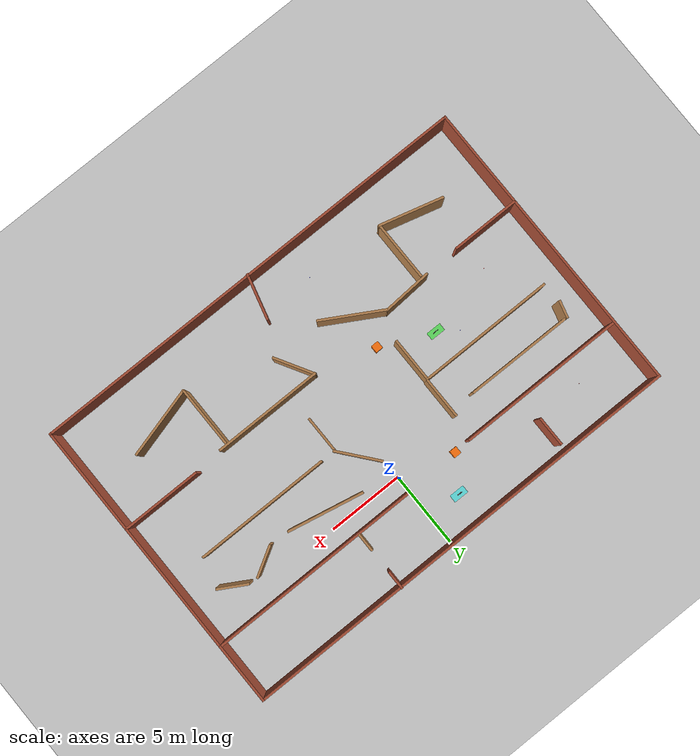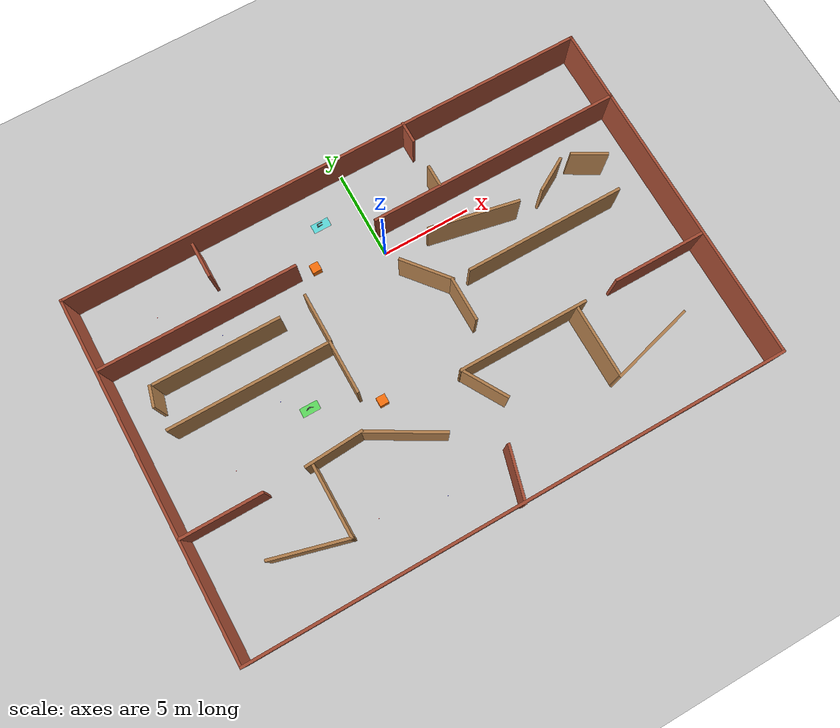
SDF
<sdf version="1.6">
 <world name="default">
  <model name="ground_plane">
   <static>1</static>
   <link name="link">
    <collision name="collision">
     <geometry><plane><normal>0 0 1</normal><size>100 100</size></plane></geometry>
     <surface><friction><ode><mu>1</mu><mu2>1</mu2></ode></friction></surface>
    </collision>
    <visual name="visual">
     <cast_shadows>0</cast_shadows>
     <geometry><plane><normal>0 0 1</normal><size>100 100</size></plane></geometry>
     <material>
      <script><uri>file://media/materials/scripts/gazebo.material</uri><name>Gazebo/Grey</name></script>
     </material>
    </visual>
    <velocity_decay><linear>0</linear><angular>0</angular></velocity_decay>
   </link>
  </model>
  <model name="officeroom">
   <pose>-0.693163 -4.92976 0 0 -0 0</pose>
   <link name="Wall_10">
    <collision name="Wall_10_Collision">
     <geometry><box><size>20 0.15 2.5</size></box></geometry>
     <pose>0 0 1.25 0 -0 0</pose>
    </collision>
    <visual name="Wall_10_Visual">
     <pose>0 0 1.25 0 -0 0</pose>
     <geometry><box><size>20 0.15 2.5</size></box></geometry>
     <material>
      <script><uri>file://media/materials/scripts/gazebo.material</uri><name>Gazebo/Bricks</name></script>
      <ambient>1 1 1 1</ambient>
     </material>
     <meta><layer>0</layer></meta>
    </visual>
    <pose>14.925 0.014919 0 0 -0 -1.57081</pose>
   </link>
   <link name="Wall_107">
    <collision name="Wall_107_Collision">
     <geometry><box><size>3.27854 0.15 2.5</size></box></geometry>
     <pose>0 0 1.25 0 -0 0</pose>
    </collision>
    <visual name="Wall_107_Visual">
     <pose>0 0 1.25 0 -0 0</pose>
     <geometry><box><size>3.27854 0.15 2.5</size></box></geometry>
     <material>
      <script><uri>file://media/materials/scripts/gazebo.material</uri><name>Gazebo/Wood</name></script>
      <ambient>1 1 1 1</ambient>
     </material>
     <meta><layer>0</layer></meta>
    </visual>
    <pose>-6.58027 -3.242 0 0 -0 -3.08207</pose>
   </link>
   <link name="Wall_109">
    <collision name="Wall_109_Collision">
     <geometry><box><size>4.5 0.15 2.5</size></box></geometry>
     <pose>0 0 1.25 0 -0 0</pose>
    </collision>
    <visual name="Wall_109_Visual">
     <pose>0 0 1.25 0 -0 0</pose>
     <geometry><box><size>4.5 0.15 2.5</size></box></geometry>
     <material>
      <script><uri>file://media/materials/scripts/gazebo.material</uri><name>Gazebo/Bricks</name></script>
      <ambient>1 1 1 1</ambient>
     </material>
     <meta><layer>0</layer></meta>
    </visual>
    <pose>-12.6881 -3.41033 0 0 -0 0</pose>
   </link>
   <link name="Wall_113">
    <collision name="Wall_113_Collision">
     <geometry><box><size>7.25 0.15 2.5</size></box></geometry>
     <pose>0 0 1.25 0 -0 0</pose>
    </collision>
    <visual name="Wall_113_Visual">
     <pose>0 0 1.25 0 -0 0</pose>
     <geometry><box><size>7.25 0.15 2.5</size></box></geometry>
     <material>
      <script><uri>file://media/materials/scripts/gazebo.material</uri><name>Gazebo/Wood</name></script>
      <ambient>1 1 1 1</ambient>
     </material>
     <meta><layer>0</layer></meta>
    </visual>
    <pose>4.22386 -2.91887 0 0 -0 0</pose>
   </link>
   <link name="Wall_115">
    <collision name="Wall_115_Collision">
     <geometry><box><size>5.25 0.15 2.5</size></box></geometry>
     <pose>0 0 1.25 0 -0 0</pose>
    </collision>
    <visual name="Wall_115_Visual">
     <pose>0 0 1.25 0 -0 0</pose>
     <geometry><box><size>5.25 0.15 2.5</size></box></geometry>
     <material>
      <script><uri>file://media/materials/scripts/gazebo.material</uri><name>Gazebo/Bricks</name></script>
      <ambient>1 1 1 1</ambient>
     </material>
     <meta><layer>0</layer></meta>
    </visual>
    <pose>12.3137 -2.7793 0 0 -0 3.14159</pose>
   </link>
   <link name="Wall_118">
    <collision name="Wall_118_Collision">
     <geometry><box><size>2.5 0.15 2.5</size></box></geometry>
     <pose>0 0 1.25 0 -0 0</pose>
    </collision>
    <visual name="Wall_118_Visual">
     <pose>0 0 1.25 0 -0 0</pose>
     <geometry><box><size>2.5 0.15 2.5</size></box></geometry>
     <material>
      <script><uri>file://media/materials/scripts/gazebo.material</uri><name>Gazebo/Wood</name></script>
      <ambient>1 1 1 1</ambient>
     </material>
     <meta><layer>0</layer></meta>
    </visual>
    <pose>2.60295 0.147134 0 0 -0 -1.5708</pose>
   </link>
   <link name="Wall_12">
    <collision name="Wall_12_Collision">
     <geometry><box><size>30 0.15 2.5</size></box></geometry>
     <pose>0 0 1.25 0 -0 0</pose>
    </collision>
    <visual name="Wall_12_Visual">
     <pose>0 0 1.25 0 -0 0</pose>
     <geometry><box><size>30 0.15 2.5</size></box></geometry>
     <material>
      <script><uri>file://media/materials/scripts/gazebo.material</uri><name>Gazebo/Bricks</name></script>
      <ambient>1 1 1 1</ambient>
     </material>
     <meta><layer>0</layer></meta>
    </visual>
    <pose>-0.000162 -9.90993 0 0 -0 3.14159</pose>
   </link>
   <link name="Wall_120">
    <collision name="Wall_120_Collision">
     <geometry><box><size>2.75 0.15 2.5</size></box></geometry>
     <pose>0 0 1.25 0 -0 0</pose>
    </collision>
    <visual name="Wall_120_Visual">
     <pose>0 0 1.25 0 -0 0</pose>
     <geometry><box><size>2.75 0.15 2.5</size></box></geometry>
     <material>
      <script><uri>file://media/materials/scripts/gazebo.material</uri><name>Gazebo/Wood</name></script>
      <ambient>1 1 1 1</ambient>
     </material>
     <meta><layer>0</layer></meta>
    </visual>
    <pose>1.32386 -4.0447 0 0 -0 -1.0472</pose>
   </link>
   <link name="Wall_125">
    <collision name="Wall_125_Collision">
     <geometry><box><size>4 0.15 2.5</size></box></geometry>
     <pose>0 0 1.25 0 -0 0</pose>
    </collision>
    <visual name="Wall_125_Visual">
     <pose>0 0 1.25 0 -0 0</pose>
     <geometry><box><size>4 0.15 2.5</size></box></geometry>
     <material>
      <script><uri>file://media/materials/scripts/gazebo.material</uri><name>Gazebo/Wood</name></script>
      <ambient>1 1 1 1</ambient>
     </material>
     <meta><layer>0</layer></meta>
    </visual>
    <pose>-7.82101 -5.406 0 0 -0 -1.5708</pose>
   </link>
   <link name="Wall_127">
    <collision name="Wall_127_Collision">
     <geometry><box><size>4 0.15 2.5</size></box></geometry>
     <pose>0 0 1.25 0 -0 0</pose>
    </collision>
    <visual name="Wall_127_Visual">
     <pose>0 0 1.25 0 -0 0</pose>
     <geometry><box><size>4 0.15 2.5</size></box></geometry>
     <material>
      <script><uri>file://media/materials/scripts/gazebo.material</uri><name>Gazebo/Wood</name></script>
      <ambient>1 1 1 1</ambient>
     </material>
     <meta><layer>0</layer></meta>
    </visual>
    <pose>7.28181 -5.01384 0 0 -0 -1.5708</pose>
   </link>
   <link name="Wall_129">
    <collision name="Wall_129_Collision">
     <geometry><box><size>4.25 0.15 2.5</size></box></geometry>
     <pose>0 0 1.25 0 -0 0</pose>
    </collision>
    <visual name="Wall_129_Visual">
     <pose>0 0 1.25 0 -0 0</pose>
     <geometry><box><size>4.25 0.15 2.5</size></box></geometry>
     <material>
      <script><uri>file://media/materials/scripts/gazebo.material</uri><name>Gazebo/Wood</name></script>
      <ambient>1 1 1 1</ambient>
     </material>
     <meta><layer>0</layer></meta>
    </visual>
    <pose>-9.80116 -6.80042 0 0 -0 2.87979</pose>
   </link>
   <link name="Wall_132">
    <collision name="Wall_132_Collision">
     <geometry><box><size>4.75 0.15 2.5</size></box></geometry>
     <pose>0 0 1.25 0 -0 0</pose>
    </collision>
    <visual name="Wall_132_Visual">
     <pose>0 0 1.25 0 -0 0</pose>
     <geometry><box><size>4.75 0.15 2.5</size></box></geometry>
     <material>
      <script><uri>file://media/materials/scripts/gazebo.material</uri><name>Gazebo/Wood</name></script>
      <ambient>1 1 1 1</ambient>
     </material>
     <meta><layer>0</layer></meta>
    </visual>
    <pose>9.51735 -6.40461 0 0 -0 0.261799</pose>
   </link>
   <link name="Wall_134">
    <collision name="Wall_134_Collision">
     <geometry><box><size>3 0.15 2.5</size></box></geometry>
     <pose>0 0 1.25 0 -0 0</pose>
    </collision>
    <visual name="Wall_134_Visual">
     <pose>0 0 1.25 0 -0 0</pose>
     <geometry><box><size>3 0.15 2.5</size></box></geometry>
     <material>
      <script><uri>file://media/materials/scripts/gazebo.material</uri><name>Gazebo/Bricks</name></script>
      <ambient>1 1 1 1</ambient>
     </material>
     <meta><layer>0</layer></meta>
    </visual>
    <pose>0.445972 -8.57754 0 0 -0 1.309</pose>
   </link>
   <link name="Wall_15">
    <collision name="Wall_15_Collision">
     <geometry><box><size>20 0.15 2.5</size></box></geometry>
     <pose>0 0 1.25 0 -0 0</pose>
    </collision>
    <visual name="Wall_15_Visual">
     <pose>0 0 1.25 0 -0 0</pose>
     <geometry><box><size>20 0.15 2.5</size></box></geometry>
     <material>
      <script><uri>file://media/materials/scripts/gazebo.material</uri><name>Gazebo/Bricks</name></script>
      <ambient>1 1 1 1</ambient>
     </material>
     <meta><layer>0</layer></meta>
    </visual>
    <pose>-14.9252 0.015073 0 0 -0 1.5708</pose>
   </link>
   <link name="Wall_2">
    <collision name="Wall_2_Collision">
     <geometry><box><size>30 0.15 2.5</size></box></geometry>
     <pose>0 0 1.25 0 -0 0</pose>
    </collision>
    <visual name="Wall_2_Visual">
     <pose>0 0 1.25 0 -0 0</pose>
     <geometry><box><size>30 0.15 2.5</size></box></geometry>
     <material>
      <script><uri>file://media/materials/scripts/gazebo.material</uri><name>Gazebo/Bricks</name></script>
      <ambient>1 1 1 1</ambient>
     </material>
     <meta><layer>0</layer></meta>
    </visual>
    <pose>0.000163 9.93976 0 0 -0 0</pose>
   </link>
   <link name="Wall_29">
    <collision name="Wall_29_Collision">
     <geometry><box><size>1.25 0.15 2.5</size></box></geometry>
     <pose>0 0 1.25 0 -0 0</pose>
    </collision>
    <visual name="Wall_29_Visual">
     <pose>0 0 1.25 0 -0 0</pose>
     <geometry><box><size>1.25 0.15 2.5</size></box></geometry>
     <material>
      <script><uri>file://media/materials/scripts/gazebo.material</uri><name>Gazebo/Bricks</name></script>
      <ambient>1 1 1 1</ambient>
     </material>
     <meta><layer>0</layer></meta>
    </visual>
    <pose>4.61028 9.42084 0 0 -0 -1.5708</pose>
   </link>
   <link name="Wall_31">
    <collision name="Wall_31_Collision">
     <geometry><box><size>1.25 0.15 2.5</size></box></geometry>
     <pose>0 0 1.25 0 -0 0</pose>
    </collision>
    <visual name="Wall_31_Visual">
     <pose>0 0 1.25 0 -0 0</pose>
     <geometry><box><size>1.25 0.15 2.5</size></box></geometry>
     <material>
      <script><uri>file://media/materials/scripts/gazebo.material</uri><name>Gazebo/Wood</name></script>
      <ambient>1 1 1 1</ambient>
     </material>
     <meta><layer>0</layer></meta>
    </visual>
    <pose>4.59016 6.61881 0 0 -0 1.5708</pose>
   </link>
   <link name="Wall_34">
    <collision name="Wall_34_Collision">
     <geometry><box><size>2 0.15 2.5</size></box></geometry>
     <pose>0 0 1.25 0 -0 0</pose>
    </collision>
    <visual name="Wall_34_Visual">
     <pose>0 0 1.25 0 -0 0</pose>
     <geometry><box><size>2 0.15 2.5</size></box></geometry>
     <material>
      <script><uri>file://media/materials/scripts/gazebo.material</uri><name>Gazebo/Bricks</name></script>
      <ambient>1 1 1 1</ambient>
     </material>
     <meta><layer>0</layer></meta>
    </visual>
    <pose>-7.92097 8.43964 0 0 -0 -1.5708</pose>
   </link>
   <link name="Wall_38">
    <collision name="Wall_38_Collision">
     <geometry><box><size>11 0.15 2.5</size></box></geometry>
     <pose>0 0 1.25 0 -0 0</pose>
    </collision>
    <visual name="Wall_38_Visual">
     <pose>0 0 1.25 0 -0 0</pose>
     <geometry><box><size>11 0.15 2.5</size></box></geometry>
     <material>
      <script><uri>file://media/materials/scripts/gazebo.material</uri><name>Gazebo/Bricks</name></script>
      <ambient>1 1 1 1</ambient>
     </material>
     <meta><layer>0</layer></meta>
    </visual>
    <pose>-9.35541 5.8262 0 0 -0 0</pose>
   </link>
   <link name="Wall_40">
    <collision name="Wall_40_Collision">
     <geometry><box><size>14.25 0.15 2.5</size></box></geometry>
     <pose>0 0 1.25 0 -0 0</pose>
    </collision>
    <visual name="Wall_40_Visual">
     <pose>0 0 1.25 0 -0 0</pose>
     <geometry><box><size>14.25 0.15 2.5</size></box></geometry>
     <material>
      <script><uri>file://media/materials/scripts/gazebo.material</uri><name>Gazebo/Bricks</name></script>
      <ambient>1 1 1 1</ambient>
     </material>
     <meta><layer>0</layer></meta>
    </visual>
    <pose>7.83962 5.98375 0 0 -0 3.14159</pose>
   </link>
   <link name="Wall_46">
    <collision name="Wall_46_Collision">
     <geometry><box><size>7.0 0.15 2.5</size></box></geometry>
     <pose>0 0 1.25 0 -0 0</pose>
    </collision>
    <visual name="Wall_46_Visual">
     <pose>0 0 1.25 0 -0 0</pose>
     <geometry><box><size>7.0 0.15 2.5</size></box></geometry>
     <material>
      <script><uri>file://media/materials/scripts/gazebo.material</uri><name>Gazebo/Wood</name></script>
      <ambient>1 1 1 1</ambient>
     </material>
     <meta><layer>0</layer></meta>
    </visual>
    <pose>-9.30884 3.8355 0 0 -0 -0.004163</pose>
   </link>
   <link name="Wall_49">
    <collision name="Wall_49_Collision">
     <geometry><box><size>1.17019 0.15 2.5</size></box></geometry>
     <pose>0 0 1.25 0 -0 0</pose>
    </collision>
    <visual name="Wall_49_Visual">
     <pose>0 0 1.25 0 -0 0</pose>
     <geometry><box><size>1.17019 0.15 2.5</size></box></geometry>
     <material>
      <script><uri>file://media/materials/scripts/gazebo.material</uri><name>Gazebo/Wood</name></script>
      <ambient>1 1 1 1</ambient>
     </material>
     <meta><layer>0</layer></meta>
    </visual>
    <pose>-13.076 3.35727 0 0 -0 -1.82702</pose>
   </link>
   <link name="Wall_57">
    <collision name="Wall_57_Collision">
     <geometry><box><size>2.75 0.15 2.5</size></box></geometry>
     <pose>0 0 1.25 0 -0 0</pose>
    </collision>
    <visual name="Wall_57_Visual">
     <pose>0 0 1.25 0 -0 0</pose>
     <geometry><box><size>2.75 0.15 2.5</size></box></geometry>
     <material>
      <script><uri>file://media/materials/scripts/gazebo.material</uri><name>Gazebo/Wood</name></script>
      <ambient>1 1 1 1</ambient>
     </material>
     <meta><layer>0</layer></meta>
    </visual>
    <pose>-4.21161 2.89682 0 0 -0 1.5708</pose>
   </link>
   <link name="Wall_59">
    <collision name="Wall_59_Collision">
     <geometry><box><size>5.0 0.15 2.5</size></box></geometry>
     <pose>0 0 1.25 0 -0 0</pose>
    </collision>
    <visual name="Wall_59_Visual">
     <pose>0 0 1.25 0 -0 0</pose>
     <geometry><box><size>5.0 0.15 2.5</size></box></geometry>
     <material>
      <script><uri>file://media/materials/scripts/gazebo.material</uri><name>Gazebo/Wood</name></script>
      <ambient>1 1 1 1</ambient>
     </material>
     <meta><layer>0</layer></meta>
    </visual>
    <pose>5.28704 3.77735 0 0 -0 -0.202428</pose>
   </link>
   <link name="Wall_60">
    <collision name="Wall_60_Collision">
     <geometry><box><size>2.1 0.15 2.5</size></box></geometry>
     <pose>0 0 1.25 0 -0 0</pose>
    </collision>
    <visual name="Wall_60_Visual">
     <pose>0 0 1.25 0 -0 0</pose>
     <geometry><box><size>2.1 0.15 2.5</size></box></geometry>
     <material>
      <script><uri>file://media/materials/scripts/gazebo.material</uri><name>Gazebo/Wood</name></script>
      <ambient>1 1 1 1</ambient>
     </material>
     <meta><layer>0</layer></meta>
    </visual>
    <pose>9.88652 3.73459 0 0 -0 0.527727</pose>
   </link>
   <link name="Wall_61">
    <collision name="Wall_61_Collision">
     <geometry><box><size>2.0 0.15 2.5</size></box></geometry>
     <pose>0 0 1.25 0 -0 0</pose>
    </collision>
    <visual name="Wall_61_Visual">
     <pose>0 0 1.25 0 -0 0</pose>
     <geometry><box><size>2.0 0.15 2.5</size></box></geometry>
     <material>
      <script><uri>file://media/materials/scripts/gazebo.material</uri><name>Gazebo/Wood</name></script>
      <ambient>1 1 1 1</ambient>
     </material>
     <meta><layer>0</layer></meta>
    </visual>
    <pose>12.2003 3.7238 0 0 -0 -0.523599</pose>
   </link>
   <link name="Wall_66">
    <collision name="Wall_66_Collision">
     <geometry><box><size>3.01901 0.15 2.5</size></box></geometry>
     <pose>0 0 1.25 0 -0 0</pose>
    </collision>
    <visual name="Wall_66_Visual">
     <pose>0 0 1.25 0 -0 0</pose>
     <geometry><box><size>3.01901 0.15 2.5</size></box></geometry>
     <material>
      <script><uri>file://media/materials/scripts/gazebo.material</uri><name>Gazebo/Wood</name></script>
      <ambient>1 1 1 1</ambient>
     </material>
     <meta><layer>0</layer></meta>
    </visual>
    <pose>1.74226 2.43334 0 0 -0 2.25548</pose>
   </link>
   <link name="Wall_68">
    <collision name="Wall_68_Collision">
     <geometry><box><size>9 0.15 2.5</size></box></geometry>
     <pose>0 0 1.25 0 -0 0</pose>
    </collision>
    <visual name="Wall_68_Visual">
     <pose>0 0 1.25 0 -0 0</pose>
     <geometry><box><size>9 0.15 2.5</size></box></geometry>
     <material>
      <script><uri>file://media/materials/scripts/gazebo.material</uri><name>Gazebo/Wood</name></script>
      <ambient>1 1 1 1</ambient>
     </material>
     <meta><layer>0</layer></meta>
    </visual>
    <pose>-8.68528 1.49923 0 0 -0 3.14159</pose>
   </link>
   <link name="Wall_72">
    <collision name="Wall_72_Collision">
     <geometry><box><size>8.9356 0.15 2.5</size></box></geometry>
     <pose>0 0 1.25 0 -0 0</pose>
    </collision>
    <visual name="Wall_72_Visual">
     <pose>0 0 1.25 0 -0 0</pose>
     <geometry><box><size>8.9356 0.15 2.5</size></box></geometry>
     <material>
      <script><uri>file://media/materials/scripts/gazebo.material</uri><name>Gazebo/Wood</name></script>
      <ambient>1 1 1 1</ambient>
     </material>
     <meta><layer>0</layer></meta>
    </visual>
    <pose>8.04226 1.32213 0 0 -0 3.14159</pose>
   </link>
   <link name="Wall_75">
    <collision name="Wall_75_Collision">
     <geometry><box><size>3 0.15 2.5</size></box></geometry>
     <pose>0 0 1.25 0 -0 0</pose>
    </collision>
    <visual name="Wall_75_Visual">
     <pose>0 0 1.25 0 -0 0</pose>
     <geometry><box><size>3 0.15 2.5</size></box></geometry>
     <material>
      <script><uri>file://media/materials/scripts/gazebo.material</uri><name>Gazebo/Wood</name></script>
      <ambient>1 1 1 1</ambient>
     </material>
     <meta><layer>0</layer></meta>
    </visual>
    <pose>-4.26028 0.074229 0 0 -0 -1.5708</pose>
   </link>
   <link name="Wall_81">
    <collision name="Wall_81_Collision">
     <geometry><box><size>4.25 0.15 2.5</size></box></geometry>
     <pose>0 0 1.25 0 -0 0</pose>
    </collision>
    <visual name="Wall_81_Visual">
     <pose>0 0 1.25 0 -0 0</pose>
     <geometry><box><size>4.25 0.15 2.5</size></box></geometry>
     <material>
      <script><uri>file://media/materials/scripts/gazebo.material</uri><name>Gazebo/Wood</name></script>
      <ambient>1 1 1 1</ambient>
     </material>
     <meta><layer>0</layer></meta>
    </visual>
    <pose>-3.1969 -4.22048 0 0 -0 -0.523599</pose>
   </link>
   <static>1</static>
  </model>
  <model name="red_cube_1">
   <pose>-12.0 2.5 0.75 0 0 0</pose>
   <link name="link">
    <inertial>
     <mass>0.1</mass>
     <inertia>
      <ixx>0.000015</ixx>
      <ixy>0</ixy>
      <ixz>0</ixz>
      <iyy>0.000015</iyy>
      <iyz>0</iyz>
      <izz>0.000015</izz>
     </inertia>
    </inertial>
    <gravity>0</gravity>
    <collision name="collision">
     <laser_retro>130</laser_retro>
     <geometry><box><size>0.03 0.03 0.03</size></box></geometry>
     <surface><contact><collide_bitmask>0</collide_bitmask></contact></surface>
    </collision>
    <visual name="visual">
     <geometry><box><size>0.03 0.03 0.03</size></box></geometry>
     <material><ambient>1 0 0 1</ambient><diffuse>1 0 0 1</diffuse></material>
    </visual>
   </link>
  </model>
  <model name="red_cube_2">
   <pose>-12.0 -6.5 0.75 0 0 0</pose>
   <link name="link">
    <inertial>
     <mass>0.1</mass>
     <inertia>
      <ixx>0.000015</ixx>
      <ixy>0</ixy>
      <ixz>0</ixz>
      <iyy>0.000015</iyy>
      <iyz>0</iyz>
      <izz>0.000015</izz>
     </inertia>
    </inertial>
    <gravity>0</gravity>
    <collision name="collision">
     <laser_retro>130</laser_retro>
     <geometry><box><size>0.03 0.03 0.03</size></box></geometry>
     <surface><contact><collide_bitmask>0</collide_bitmask></contact></surface>
    </collision>
    <visual name="visual">
     <geometry><box><size>0.03 0.03 0.03</size></box></geometry>
     <material><ambient>1 0 0 1</ambient><diffuse>1 0 0 1</diffuse></material>
    </visual>
   </link>
  </model>
  <model name="red_cube_3">
   <pose>-7.0 -12.0 0.75 0 0 0</pose>
   <link name="link">
    <inertial>
     <mass>0.1</mass>
     <inertia>
      <ixx>0.000015</ixx>
      <ixy>0</ixy>
      <ixz>0</ixz>
      <iyy>0.000015</iyy>
      <iyz>0</iyz>
      <izz>0.000015</izz>
     </inertia>
    </inertial>
    <gravity>0</gravity>
    <collision name="collision">
     <laser_retro>130</laser_retro>
     <geometry><box><size>0.03 0.03 0.03</size></box></geometry>
     <surface><contact><collide_bitmask>0</collide_bitmask></contact></surface>
    </collision>
    <visual name="visual">
     <geometry><box><size>0.03 0.03 0.03</size></box></geometry>
     <material><ambient>1 0 0 1</ambient><diffuse>1 0 0 1</diffuse></material>
    </visual>
   </link>
  </model>
  <model name="blue_cube_1">
   <pose>-9.5 0.0 0.75 0 0 0</pose>
   <link name="link">
    <inertial>
     <mass>0.1</mass>
     <inertia>
      <ixx>0.000015</ixx>
      <ixy>0</ixy>
      <ixz>0</ixz>
      <iyy>0.000015</iyy>
      <iyz>0</iyz>
      <izz>0.000015</izz>
     </inertia>
    </inertial>
    <gravity>0</gravity>
    <collision name="collision">
     <laser_retro>130</laser_retro>
     <geometry><box><size>0.03 0.03 0.03</size></box></geometry>
     <surface><contact><collide_bitmask>0</collide_bitmask></contact></surface>
    </collision>
    <visual name="visual">
     <geometry><box><size>0.03 0.03 0.03</size></box></geometry>
     <material><ambient>0 0 1 1</ambient><diffuse>0 0 1 1</diffuse></material>
    </visual>
   </link>
  </model>
  <model name="blue_cube_2">
   <pose>-8.5 -4.5 0.75 0 0 0</pose>
   <link name="link">
    <inertial>
     <mass>0.1</mass>
     <inertia>
      <ixx>0.000015</ixx>
      <ixy>0</ixy>
      <ixz>0</ixz>
      <iyy>0.000015</iyy>
      <iyz>0</iyz>
      <izz>0.000015</izz>
     </inertia>
    </inertial>
    <gravity>0</gravity>
    <collision name="collision">
     <laser_retro>130</laser_retro>
     <geometry><box><size>0.03 0.03 0.03</size></box></geometry>
     <surface><contact><collide_bitmask>0</collide_bitmask></contact></surface>
    </collision>
    <visual name="visual">
     <geometry><box><size>0.03 0.03 0.03</size></box></geometry>
     <material><ambient>0 0 1 1</ambient><diffuse>0 0 1 1</diffuse></material>
    </visual>
   </link>
  </model>
  <model name="blue_cube_3">
   <pose>-3.5 -12.7 0.75 0 0 0</pose>
   <link name="link">
    <inertial>
     <mass>0.1</mass>
     <inertia>
      <ixx>0.000015</ixx>
      <ixy>0</ixy>
      <ixz>0</ixz>
      <iyy>0.000015</iyy>
      <iyz>0</iyz>
      <izz>0.000015</izz>
     </inertia>
    </inertial>
    <gravity>0</gravity>
    <collision name="collision">
     <laser_retro>130</laser_retro>
     <geometry><box><size>0.03 0.03 0.03</size></box></geometry>
     <surface><contact><collide_bitmask>0</collide_bitmask></contact></surface>
    </collision>
    <visual name="visual">
     <geometry><box><size>0.03 0.03 0.03</size></box></geometry>
     <material><ambient>0 0 1 1</ambient><diffuse>0 0 1 1</diffuse></material>
    </visual>
   </link>
  </model>
  <model name="zone_a">
   <static>true</static>
   <pose>-7.4 -5.4 0.01 0 0 0</pose>
   <link name="base">
    <visual name="visual">
     <geometry><box><size>1.0 0.5 0.02</size></box></geometry>
     <material><ambient>0 1 0 0.5</ambient><diffuse>0 1 0 0.5</diffuse></material>
    </visual>
   </link>
   <link name="letter_A_1">
    <pose>-0.1 0 0.22 0 0.4 0</pose>
    <visual name="v">
     <geometry><box><size>0.04 0.04 0.4</size></box></geometry>
     <material><ambient>0 0 0 1</ambient><diffuse>0 0 0 1</diffuse></material>
    </visual>
   </link>
   <link name="letter_A_2">
    <pose>0.1 0 0.22 0 -0.4 0</pose>
    <visual name="v">
     <geometry><box><size>0.04 0.04 0.4</size></box></geometry>
     <material><ambient>0 0 0 1</ambient><diffuse>0 0 0 1</diffuse></material>
    </visual>
   </link>
   <link name="letter_A_3">
    <pose>0 0 0.25 0 0 0</pose>
    <visual name="v">
     <geometry><box><size>0.15 0.04 0.04</size></box></geometry>
     <material><ambient>0 0 0 1</ambient><diffuse>0 0 0 1</diffuse></material>
    </visual>
   </link>
  </model>
  <model name="zone_c">
   <static>true</static>
   <pose>-2.25 3.1 0.01 0 0 0</pose>
   <link name="base">
    <visual name="visual">
     <geometry><box><size>1.0 0.5 0.02</size></box></geometry>
     <material><ambient>0 1 1 0.5</ambient><diffuse>0 1 1 0.5</diffuse></material>
    </visual>
   </link>
   <link name="letter_C_1">
    <pose>-0.05 0 0.38 0 0 0</pose>
    <visual name="v">
     <geometry><box><size>0.3 0.04 0.04</size></box></geometry>
     <material><ambient>0 0 0 1</ambient><diffuse>0 0 0 1</diffuse></material>
    </visual>
   </link>
   <link name="letter_C_2">
    <pose>-0.05 0 0.02 0 0 0</pose>
    <visual name="v">
     <geometry><box><size>0.3 0.04 0.04</size></box></geometry>
     <material><ambient>0 0 0 1</ambient><diffuse>0 0 0 1</diffuse></material>
    </visual>
   </link>
   <link name="letter_C_3">
    <pose>-0.18 0 0.2 0 0 0</pose>
    <visual name="v">
     <geometry><box><size>0.04 0.04 0.4</size></box></geometry>
     <material><ambient>0 0 0 1</ambient><diffuse>0 0 0 1</diffuse></material>
    </visual>
   </link>
  </model>
  <model name="design_obstacle_left">
   <pose>-3.65 1.0 0.25 0 0 0</pose>
   <link name="link">
    <collision name="collision">
     <laser_retro>180</laser_retro>
     <geometry><box><size>0.5 0.5 0.5</size></box></geometry>
    </collision>
    <visual name="visual">
     <geometry><box><size>0.5 0.5 0.5</size></box></geometry>
     <material><ambient>1 0.45 0.05 1</ambient><diffuse>1 0.45 0.05 1</diffuse></material>
    </visual>
    <inertial>
     <mass>0.3</mass>
     <inertia>
      <ixx>0.012499999999999999</ixx>
      <iyy>0.012499999999999999</iyy>
      <izz>0.012499999999999999</izz>
      <ixy>0</ixy>
      <ixz>0</ixz>
      <iyz>0</iyz>
     </inertia>
    </inertial>
   </link>
   <plugin name="move_design_obstacle_left" filename="libsimple_move_plugin.so">
    <speed>0.35</speed>
    <start_x>-3.65</start_x>
    <start_y>1.0</start_y>
    <end_x>-0.8</end_x>
    <end_y>-1.8</end_y>
   </plugin>
  </model>
  <model name="design_obstacle_right">
   <pose>-4.0 -6.9 0.25 0 0 0</pose>
   <link name="link">
    <collision name="collision">
     <laser_retro>180</laser_retro>
     <geometry><box><size>0.5 0.5 0.5</size></box></geometry>
    </collision>
    <visual name="visual">
     <geometry><box><size>0.5 0.5 0.5</size></box></geometry>
     <material><ambient>1 0.45 0.05 1</ambient><diffuse>1 0.45 0.05 1</diffuse></material>
    </visual>
    <inertial>
     <mass>0.3</mass>
     <inertia>
      <ixx>0.012499999999999999</ixx>
      <iyy>0.012499999999999999</iyy>
      <izz>0.012499999999999999</izz>
      <ixy>0</ixy>
      <ixz>0</ixz>
      <iyz>0</iyz>
     </inertia>
    </inertial>
   </link>
   <plugin name="move_design_obstacle_right" filename="libsimple_move_plugin.so">
    <speed>0.35</speed>
    <start_x>-4.0</start_x>
    <start_y>-6.9</start_y>
    <end_x>-0.3</end_x>
    <end_y>-4.3</end_y>
   </plugin>
  </model>
 </world>
</sdf>
